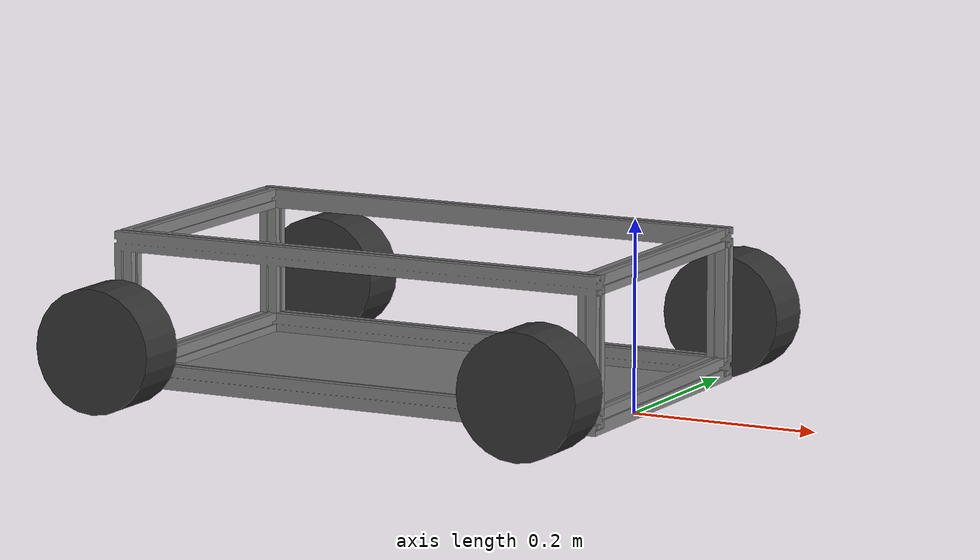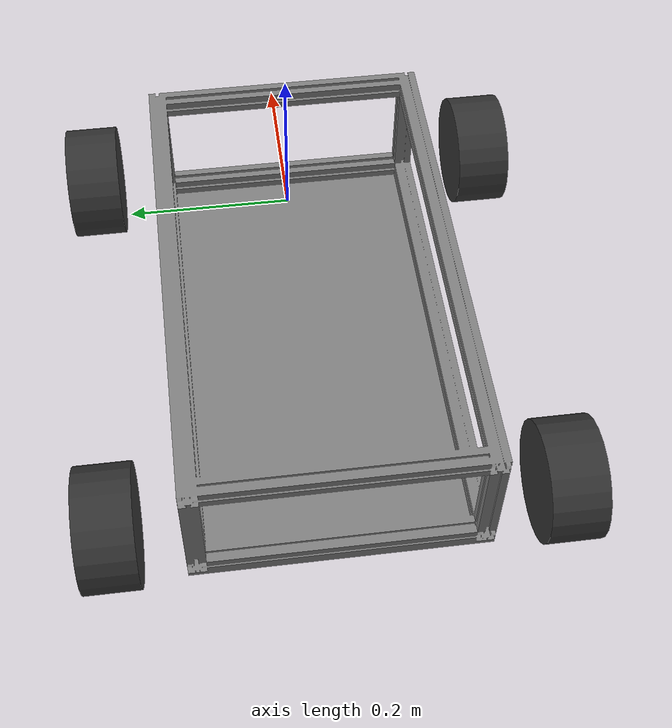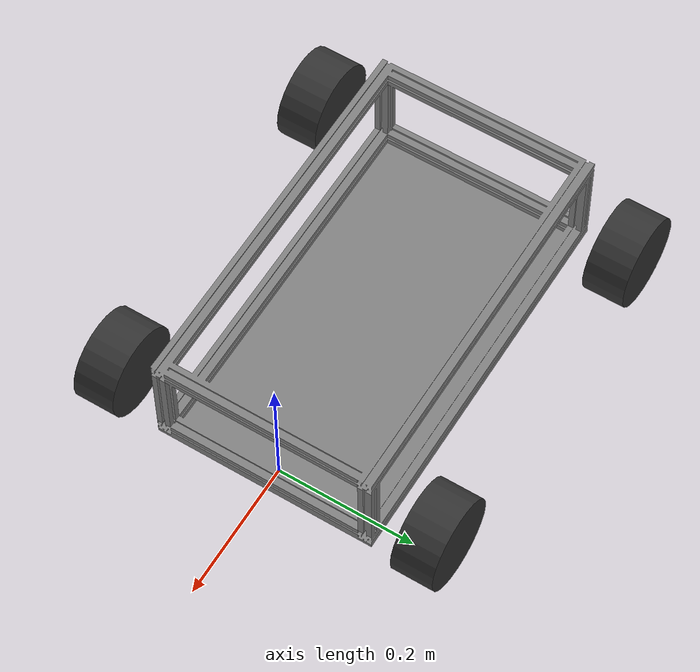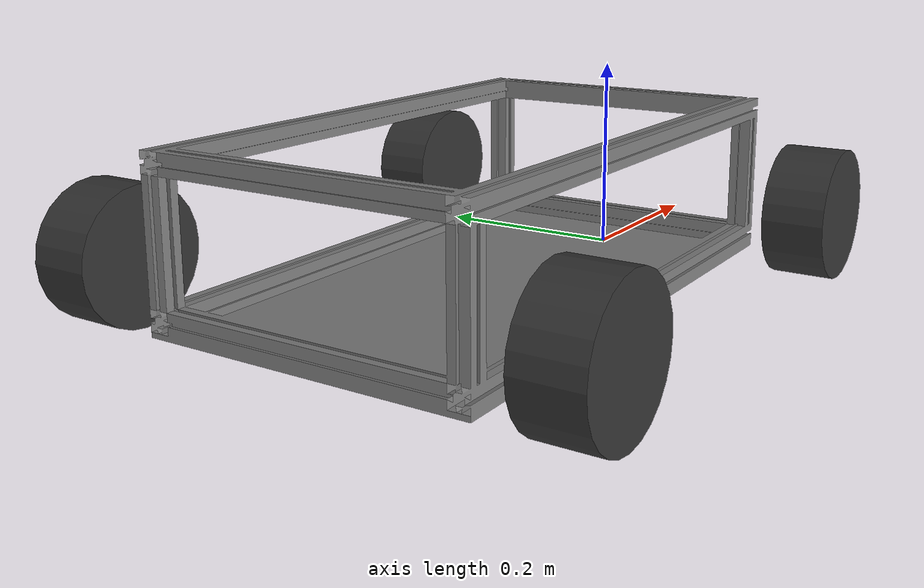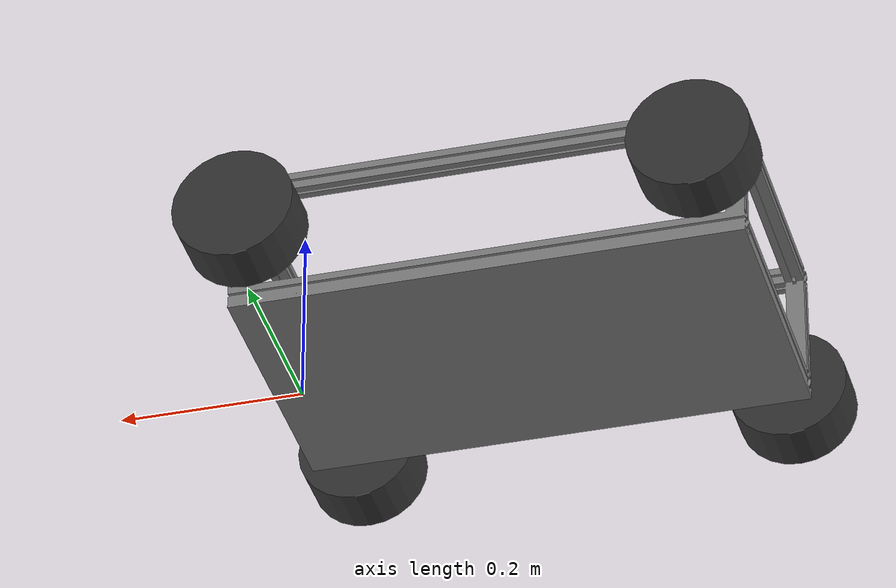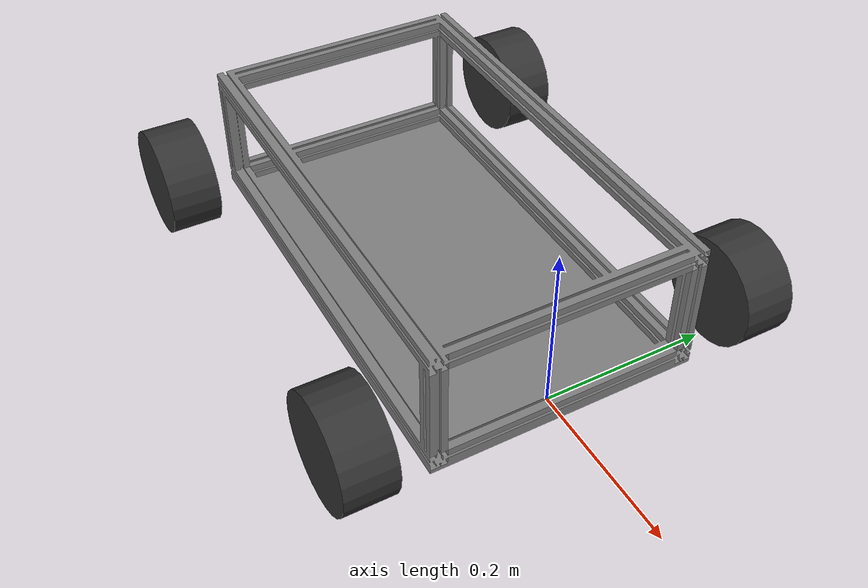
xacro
<?xml version="1.0"?>
<robot
  xmlns:controller="http://playerstage.sourceforge.net/gazebo/xmlschema/#controller"
  xmlns:interface="http://playerstage.sourceforge.net/gazebo/xmlschema/#interface"
  xmlns:xacro="http://ros.org/wiki/xacro"
  name="volksbot_base">

  <xacro:property name="M_PI" value="3.1415926535897931" />

  <xacro:property name="wheel_width" value="0.06" />
  <!-- This is the wheel radius for the robot height, the one for the odometry is in volksbot_node.cpp  -->
  <xacro:property name="wheel_radius" value="0.065" />
  <xacro:property name="axis_length" value="0.47" />
  <xacro:property name="wheel_x_offset" value="0.24" />
  <xacro:property name="wheel_z_offset" value="-0.0275" />
  <xacro:property name="turning_adaptation" value="0.95" />
  <xacro:property name="base_mass" value="10" />
  <xacro:property name="wheel_mass" value="0.25" />

  <xacro:property name="base_link_length" value="0.57"/>
  <xacro:property name="base_link_width" value="0.38"/>
  <xacro:property name="base_link_height" value="0.155"/>
  <!-- base_footprint is a fictitious link(frame) that is on the ground right below base_link origin,
       navigation stack depends on this frame -->
  <link name="base_link_dummy">
    <visual>
      <origin xyz="0 0 0" rpy="0 0 0" />
      <geometry>
        <mesh filename="package://volksbot_driver/meshes/base.stl"/>
      </geometry>
      <material name="grey" >
        <color rgba="0.5 0.5 0.5 1" />
      </material>
    </visual>
    <collision>
      <origin xyz="0 0 0" rpy="0 0 0" />
      <geometry>
        <mesh filename="package://volksbot_driver/meshes/base.stl"/>
      </geometry>
    </collision>
    <inertial>
      <mass value="${base_mass}" />
      <origin xyz="0 0 0" />
      <inertia ixx="${0.0833333 * base_mass * (base_link_width*base_link_width + base_link_height*base_link_height)}" ixy="0.0" ixz="0.0"
        iyy="${0.0833333 * base_mass * (base_link_length*base_link_length + base_link_height*base_link_height)}" iyz="0.0"
        izz="${0.0833333 * base_mass * (base_link_length*base_link_length + base_link_width*base_link_width)}" />
    </inertial>
  </link>

  <joint name="base_link_dummy_joint" type="fixed">
    <origin xyz="${-wheel_x_offset} 0 0" rpy="0 0 0" />
    <parent link="base_link"/>
    <child link="base_link_dummy" />
  </joint>
  <link name="base_footprint"/>

  <joint name="base_footprint_joint" type="fixed">
    <origin xyz="0 0 ${wheel_radius -  wheel_z_offset}" rpy="0 0 0" />
    <parent link="base_footprint"/>
    <child link="base_link" />
  </joint>
  <link name="base_link"/>

  <xacro:macro name="volksbot_wheel" params="name xyz rotate_visual friction">
    <!-- rotate_visual: 0 for right side, 1 for left side -->
    <link name="${name}_wheel_link">
      <visual>
        <origin xyz="0 0 0" rpy="${M_PI/2} 0 ${rotate_visual * M_PI}" />
        <geometry>
          <cylinder length="${wheel_width}" radius="${wheel_radius}"/>
          <!--mesh filename="package://volksbot_driver/meshes/wheel.stl" /-->
        </geometry>
        <material name="blackish">
          <color rgba="0.2 0.2 0.2 1"/>
        </material>
      </visual>
      <collision>
        <origin xyz="0 0 0" rpy="${M_PI/2} 0 0" />
        <geometry>
         <!-- using STL for collision to fix http://answers.ros.org/question/2368/gazebo-model-wheels-slip-after-upgrade-to-electric -->
          <cylinder length="${wheel_width}" radius="${wheel_radius}"/>>
          <!--mesh filename="package://volksbot_driver/meshes/wheel.stl" /-->
        </geometry>
      </collision>
      <inertial>
        <mass value="${wheel_mass}" />
        <origin xyz="0 0 0" />
        <inertia ixx="${0.0833333 * wheel_mass * (3 * wheel_radius * wheel_radius + wheel_width * wheel_width)}" ixy="0.0" ixz="0.0"
          iyy="${0.0833333 * wheel_mass * (3 * wheel_radius * wheel_radius + wheel_width * wheel_width)}" iyz="0.0"
          izz="${0.5 * wheel_mass * wheel_radius * wheel_radius}" />
      </inertial>
    </link>

    <!-- friction parameters -->
    <gazebo reference="${name}_wheel_link">
      <!-- Turtlebot: -->
      <mu1 value="${friction}"/>
      <mu2 value="${friction}"/>
      <kp value="100000000.0"/>
      <kd value="10000.0"/>
      <material value="Gazebo/FlatBlack" />
    </gazebo>

    <joint name="${name}_wheel_joint" type="continuous">
      <origin xyz="${xyz}" rpy="0 0 0" />
      <parent link="base_link"/>
      <child link="${name}_wheel_link"/>
      <axis xyz="0 1 0"/>
    </joint>
  </xacro:macro>

  <xacro:volksbot_wheel name="left_front" xyz="0 ${axis_length/2} ${wheel_z_offset}" rotate_visual="1" friction="1.0" />
  <!--xacro:volksbot_wheel name="left_middle" xyz="0 ${axis_length/2} ${wheel_z_offset}" rotate_visual="1" friction="100.0" /-->
  <xacro:volksbot_wheel name="left_rear" xyz="${-2 * wheel_x_offset} ${axis_length/2} ${wheel_z_offset}" rotate_visual="1" friction="0.00" />
  <xacro:volksbot_wheel name="right_front" xyz="0 ${-axis_length/2} ${wheel_z_offset}" rotate_visual="0" friction="1.0" />
  <!--xacro:volksbot_wheel name="right_middle" xyz="0 ${-axis_length/2} ${wheel_z_offset}" rotate_visual="0" friction="100.0" /-->
  <xacro:volksbot_wheel name="right_rear" xyz="${-2 *wheel_x_offset} ${-axis_length/2} ${wheel_z_offset}" rotate_visual="0" friction="0.00" />

  <link name="base_top" />

  <joint name="base_top_joint" type="fixed">
    <origin xyz="0 0 ${base_link_height / 2.0}" rpy="0 0 0" />
    <parent link="base_link_dummy" />
    <child link="base_top"/>
  </joint>

  <gazebo>
    <plugin name="diffdrive" filename="libgazebo_ros_diff_drive.so">
       <alwaysOn>true</alwaysOn>
       <updateRate>10</updateRate>
       <leftJoint>right_front_wheel_joint</leftJoint>
       <rightJoint>left_front_wheel_joint</rightJoint>
       <wheelSeparation>0.47</wheelSeparation>
       <wheelDiameter>0.13</wheelDiameter>
       <torque>100</torque>
       <commandTopic>cmd_vel</commandTopic>
       <odometryTopic>odom</odometryTopic>
       <odometryFrame>odom</odometryFrame>
       <robotBaseFrame>base_footprint</robotBaseFrame>
    </plugin>
  </gazebo>

</robot>
